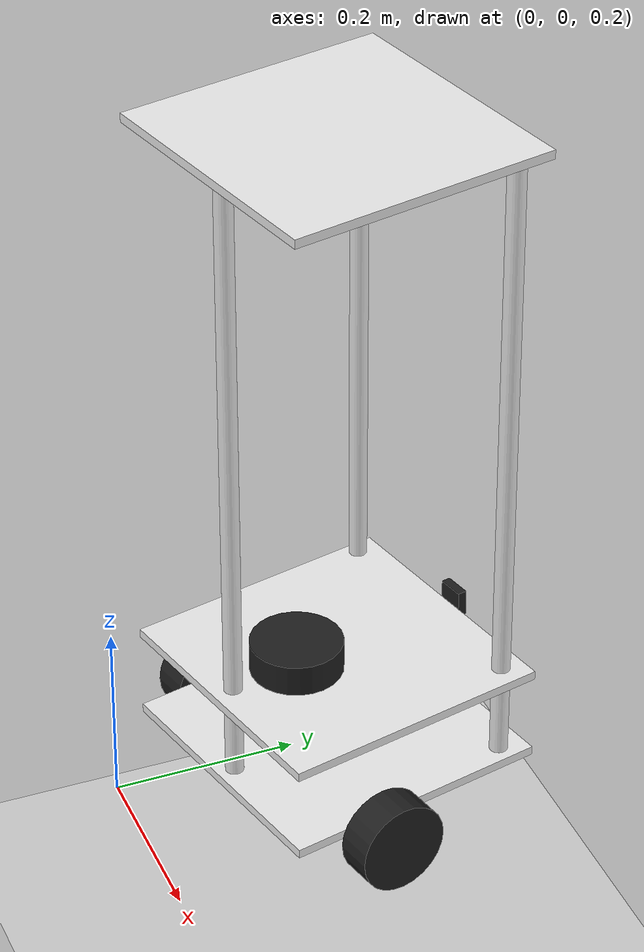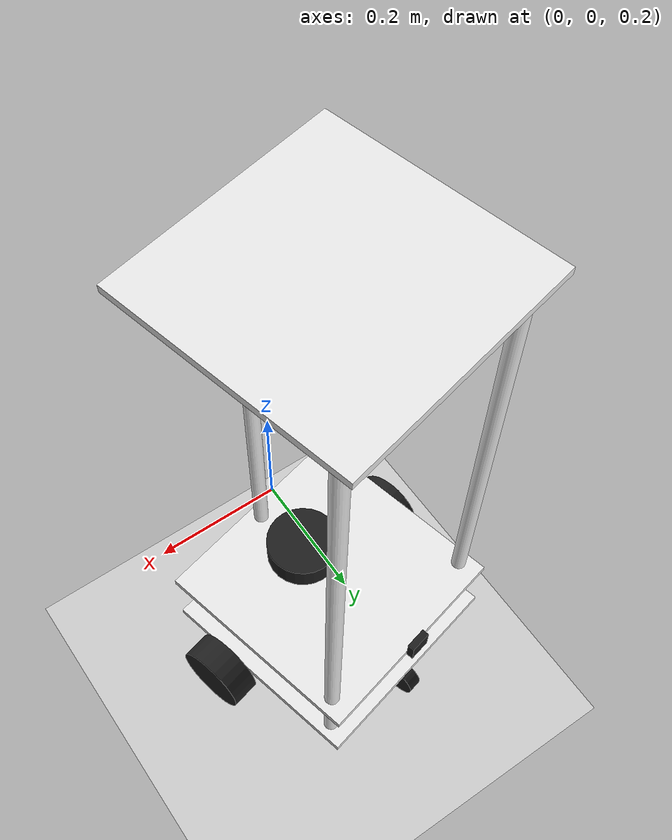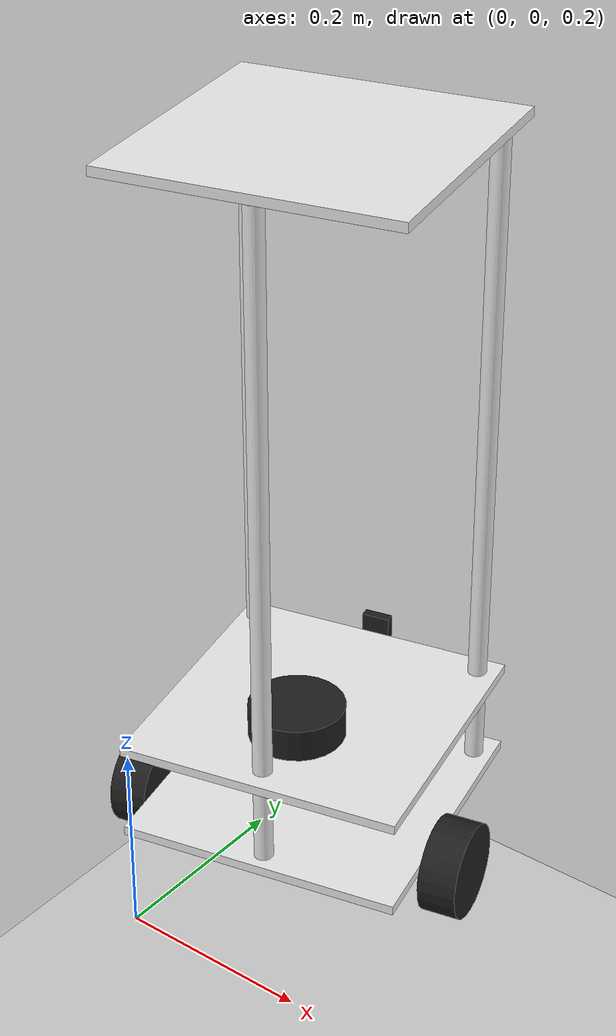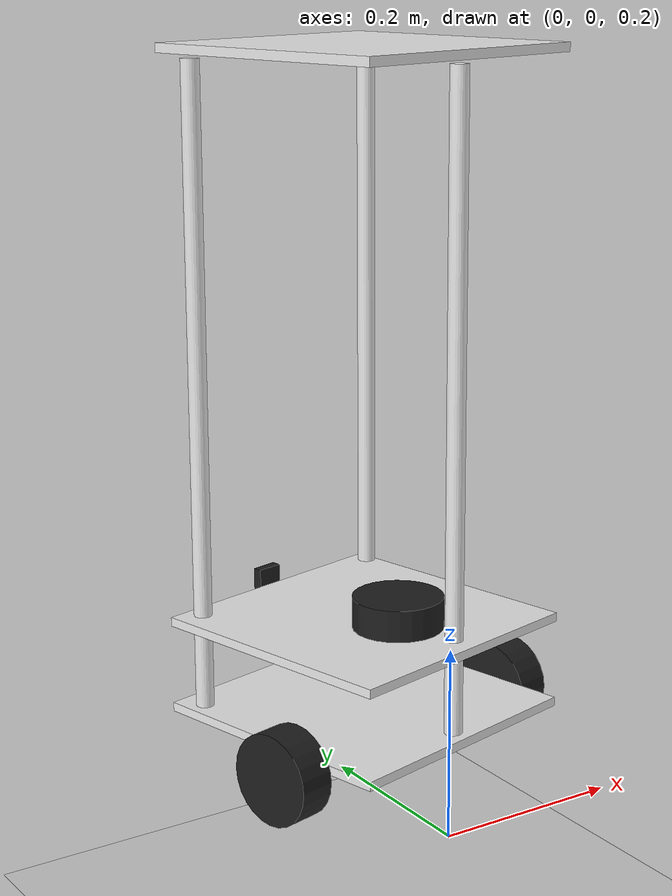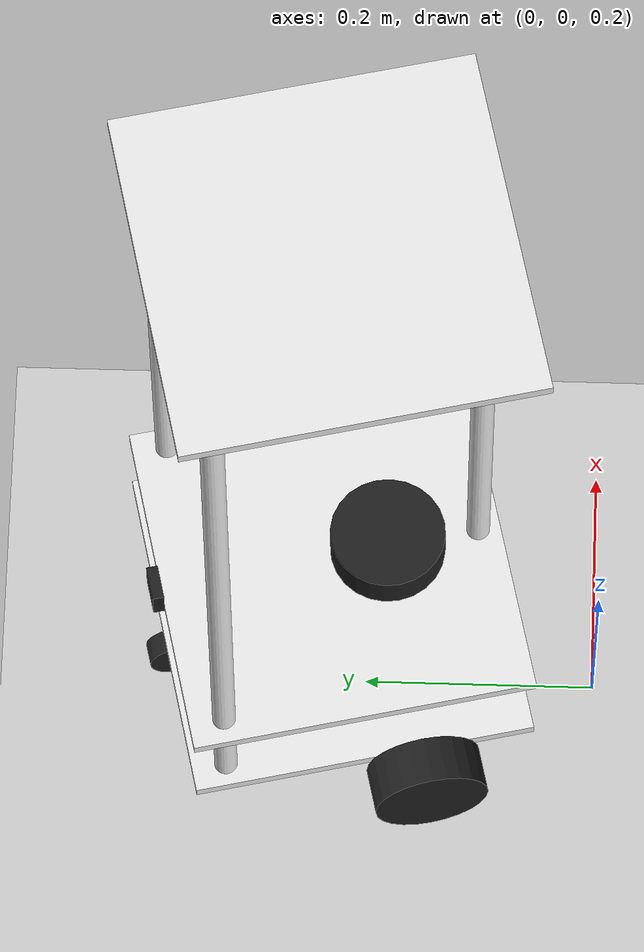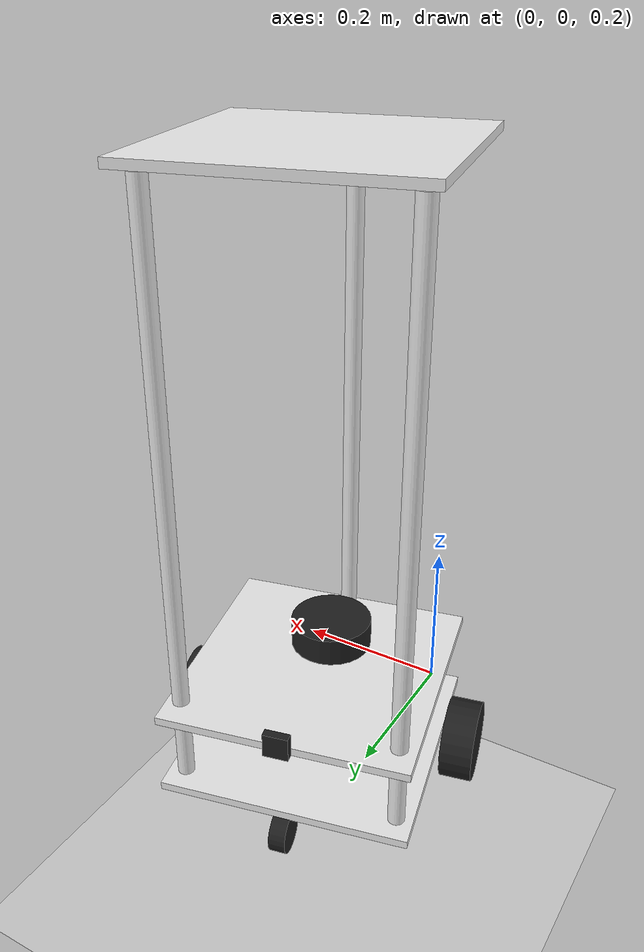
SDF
<sdf version="1.7">
 <world name="default">
  <light name="sun" type="directional">
   <pose>0 0 10 0 -0 0</pose>
   <diffuse>0.8 0.8 0.8 1</diffuse>
   <specular>0.2 0.2 0.2 1</specular>
   <attenuation>
    <range>1000</range>
    <constant>0.9</constant>
    <linear>0.01</linear>
    <quadratic>0.001</quadratic>
   </attenuation>
   <direction>-0.5 0.1 -0.9</direction>
   <spot><inner_angle>0</inner_angle><outer_angle>0</outer_angle><falloff>0</falloff></spot>
  </light>
  <model name="ground_plane">
   <static>1</static>
   <link name="link">
    <collision name="collision">
     <geometry><plane><normal>0 0 1</normal><size>100 100</size></plane></geometry>
     <surface><friction><ode><mu>100</mu><mu2>50</mu2></ode></friction></surface>
    </collision>
    <visual name="visual">
     <cast_shadows>0</cast_shadows>
     <geometry><plane><normal>0 0 1</normal><size>100 100</size></plane></geometry>
     <material>
      <script><uri>file://media/materials/scripts/gazebo.material</uri><name>Gazebo/Grey</name></script>
     </material>
    </visual>
   </link>
  </model>
  <gravity>0 0 -9.8</gravity>
  <magnetic_field>6e-06 2.3e-05 -4.2e-05</magnetic_field>
  <atmosphere type="adiabatic"/>
  <physics type="ode">
   <max_step_size>0.001</max_step_size>
   <real_time_factor>1</real_time_factor>
   <real_time_update_rate>1000</real_time_update_rate>
  </physics>
  <scene><ambient>0.4 0.4 0.4 1</ambient><background>0.7 0.7 0.7 1</background><shadows>1</shadows></scene>
  <audio><device>default</device></audio>
  <spherical_coordinates>
   <surface_model>EARTH_WGS84</surface_model>
   <latitude_deg>0</latitude_deg>
   <longitude_deg>0</longitude_deg>
   <elevation>0</elevation>
   <heading_deg>0</heading_deg>
  </spherical_coordinates>
  <model name="SLAM_ros2_bot">
   <link name="base_link">
    <inertial>
     <pose>0.055714 0 0.072143 0 -0 0</pose>
     <mass>0.7</mass>
     <inertia>
      <ixx>0.00572262</ixx>
      <ixy>0</ixy>
      <ixz>0.000938571</ixz>
      <iyy>0.00675976</iyy>
      <iyz>0</iyz>
      <izz>0.00876214</izz>
     </inertia>
    </inertial>
    <collision name="base_link_fixed_joint_lump__chassis_collision">
     <pose>0.05 0 0.075 0 -0 0</pose>
     <geometry><box><size>0.3 0.3 0.15</size></box></geometry>
    </collision>
    <collision name="base_link_fixed_joint_lump__caster_wheel_collision_1">
     <pose>0.14 0 0 0 -0 0</pose>
     <geometry><sphere><radius>0.05</radius></sphere></geometry>
     <surface><friction><ode><mu>0.001</mu><mu2>0.001</mu2></ode></friction></surface>
    </collision>
    <collision name="base_link_fixed_joint_lump__laser_frame_collision_2">
     <pose>0 0 0.13 0 -0 0</pose>
     <geometry><cylinder><length>0.04</length><radius>0.05</radius></cylinder></geometry>
    </collision>
    <visual name="base_link_fixed_joint_lump__chassis_visual">
     <pose>0.05 0 0.01 0 -0 0</pose>
     <geometry><box><size>0.3 0.3 0.01</size></box></geometry>
     <material>
      <script><name>Gazebo/White</name><uri>file://media/materials/scripts/gazebo.material</uri></script>
     </material>
    </visual>
    <visual name="base_link_fixed_joint_lump__chassis_visual_1">
     <pose>0.05 0 0.11 0 -0 0</pose>
     <geometry><box><size>0.3 0.3 0.01</size></box></geometry>
     <material>
      <script><name>Gazebo/White</name><uri>file://media/materials/scripts/gazebo.material</uri></script>
     </material>
    </visual>
    <visual name="base_link_fixed_joint_lump__chassis_visual_2">
     <pose>0.17 0.13 0.06 0 -0 0</pose>
     <geometry><cylinder><length>0.1</length><radius>0.01</radius></cylinder></geometry>
     <material>
      <script><name>Gazebo/White</name><uri>file://media/materials/scripts/gazebo.material</uri></script>
     </material>
    </visual>
    <visual name="base_link_fixed_joint_lump__chassis_visual_3">
     <pose>0.17 -0.13 0.06 0 -0 0</pose>
     <geometry><cylinder><length>0.1</length><radius>0.01</radius></cylinder></geometry>
     <material>
      <script><name>Gazebo/White</name><uri>file://media/materials/scripts/gazebo.material</uri></script>
     </material>
    </visual>
    <visual name="base_link_fixed_joint_lump__chassis_visual_4">
     <pose>-0.08 0 0.06 0 -0 0</pose>
     <geometry><cylinder><length>0.1</length><radius>0.01</radius></cylinder></geometry>
     <material>
      <script><name>Gazebo/White</name><uri>file://media/materials/scripts/gazebo.material</uri></script>
     </material>
    </visual>
    <visual name="base_link_fixed_joint_lump__chassis_visual_5">
     <pose>0.17 0.13 0.42 0 -0 0</pose>
     <geometry><cylinder><length>0.6</length><radius>0.01</radius></cylinder></geometry>
     <material>
      <script><name>Gazebo/White</name><uri>file://media/materials/scripts/gazebo.material</uri></script>
     </material>
    </visual>
    <visual name="base_link_fixed_joint_lump__chassis_visual_6">
     <pose>0.17 -0.13 0.42 0 -0 0</pose>
     <geometry><cylinder><length>0.6</length><radius>0.01</radius></cylinder></geometry>
     <material>
      <script><name>Gazebo/White</name><uri>file://media/materials/scripts/gazebo.material</uri></script>
     </material>
    </visual>
    <visual name="base_link_fixed_joint_lump__chassis_visual_7">
     <pose>-0.08 0 0.42 0 -0 0</pose>
     <geometry><cylinder><length>0.6</length><radius>0.01</radius></cylinder></geometry>
     <material>
      <script><name>Gazebo/White</name><uri>file://media/materials/scripts/gazebo.material</uri></script>
     </material>
    </visual>
    <visual name="base_link_fixed_joint_lump__chassis_visual_8">
     <pose>0.05 0 0.73 0 -0 0</pose>
     <geometry><box><size>0.3 0.3 0.01</size></box></geometry>
     <material>
      <script><name>Gazebo/White</name><uri>file://media/materials/scripts/gazebo.material</uri></script>
     </material>
    </visual>
    <visual name="base_link_fixed_joint_lump__camera_link_visual_9">
     <pose>0.205 0 0.12 0 -0 0</pose>
     <geometry><box><size>0.01 0.03 0.03</size></box></geometry>
     <material>
      <script><name>Gazebo/Black</name><uri>file://media/materials/scripts/gazebo.material</uri></script>
     </material>
    </visual>
    <visual name="base_link_fixed_joint_lump__caster_wheel_visual_10">
     <pose>0.19 0 -0.025 -1.5708 0 0</pose>
     <geometry><cylinder><length>0.02</length><radius>0.025</radius></cylinder></geometry>
     <material>
      <script><name>Gazebo/Black</name><uri>file://media/materials/scripts/gazebo.material</uri></script>
     </material>
    </visual>
    <visual name="base_link_fixed_joint_lump__laser_frame_visual_11">
     <pose>0 0 0.13 0 -0 0</pose>
     <geometry><cylinder><length>0.04</length><radius>0.05</radius></cylinder></geometry>
     <material>
      <script><name>Gazebo/Black</name><uri>file://media/materials/scripts/gazebo.material</uri></script>
     </material>
    </visual>
    <sensor name="camera" type="camera">
     <visualize>0</visualize>
     <update_rate>10</update_rate>
     <camera>
      <horizontal_fov>1.089</horizontal_fov>
      <image><width>640</width><height>480</height><format>R8G8B8</format></image>
      <clip><near>0.05</near><far>8</far></clip>
     </camera>
     <plugin name="camera_controller" filename="libgazebo_ros_camera.so">
      <frameName>camera_link_optical</frameName>
     </plugin>
     <pose>0.205 0 0.12 0 -0 0</pose>
    </sensor>
    <sensor name="laser" type="ray">
     <visualize>0</visualize>
     <update_rate>10</update_rate>
     <ray>
      <scan>
       <horizontal>
        <samples>360</samples>
        <resolution>1</resolution>
        <min_angle>-3.14</min_angle>
        <max_angle>3.14</max_angle>
       </horizontal>
       <vertical><samples>1</samples><min_angle>0</min_angle><max_angle>0</max_angle></vertical>
      </scan>
      <range><min>0.3</min><max>12</max><resolution>0.01</resolution></range>
     </ray>
     <plugin name="laser_controller" filename="libgazebo_ros_ray_sensor.so">
      <ros><argument>~/out:=scan</argument></ros>
      <output_type>sensor_msgs/LaserScan</output_type>
      <frameName>laser_frame</frameName>
     </plugin>
     <pose>0 0 0.13 0 -0 0</pose>
    </sensor>
   </link>
   <joint name="left_wheel_joint" type="revolute">
    <pose relative_to="base_link">0 0.175 0 -1.5708 0 0</pose>
    <parent>base_link</parent>
    <child>left_wheel</child>
    <axis>
     <xyz>0 0 1</xyz>
     <limit><lower>-1e+16</lower><upper>1e+16</upper></limit>
     <dynamics><spring_reference>0</spring_reference><spring_stiffness>0</spring_stiffness></dynamics>
    </axis>
   </joint>
   <link name="left_wheel">
    <pose relative_to="left_wheel_joint">0 0 0 0 -0 0</pose>
    <inertial>
     <mass>0.1</mass>
     <inertia>
      <ixx>7.58333e-05</ixx>
      <ixy>0</ixy>
      <ixz>0</ixz>
      <iyy>7.58333e-05</iyy>
      <iyz>0</iyz>
      <izz>0.000125</izz>
     </inertia>
    </inertial>
    <collision name="left_wheel_collision"><geometry><sphere><radius>0.05</radius></sphere></geometry></collision>
    <visual name="left_wheel_visual">
     <geometry><cylinder><length>0.04</length><radius>0.05</radius></cylinder></geometry>
     <material>
      <script><name>Gazebo/Black</name><uri>file://media/materials/scripts/gazebo.material</uri></script>
     </material>
    </visual>
   </link>
   <joint name="right_wheel_joint" type="revolute">
    <pose relative_to="base_link">0 -0.175 0 1.5708 -0 0</pose>
    <parent>base_link</parent>
    <child>right_wheel</child>
    <axis>
     <xyz>0 0 -1</xyz>
     <limit><lower>-1e+16</lower><upper>1e+16</upper></limit>
     <dynamics><spring_reference>0</spring_reference><spring_stiffness>0</spring_stiffness></dynamics>
    </axis>
   </joint>
   <link name="right_wheel">
    <pose relative_to="right_wheel_joint">0 0 0 0 -0 0</pose>
    <inertial>
     <mass>0.1</mass>
     <inertia>
      <ixx>7.58333e-05</ixx>
      <ixy>0</ixy>
      <ixz>0</ixz>
      <iyy>7.58333e-05</iyy>
      <iyz>0</iyz>
      <izz>0.000125</izz>
     </inertia>
    </inertial>
    <collision name="right_wheel_collision">
     <geometry><sphere><radius>0.05</radius></sphere></geometry>
    </collision>
    <visual name="right_wheel_visual">
     <geometry><cylinder><length>0.04</length><radius>0.05</radius></cylinder></geometry>
     <material>
      <script><name>Gazebo/Black</name><uri>file://media/materials/scripts/gazebo.material</uri></script>
     </material>
    </visual>
   </link>
   <static>0</static>
   <plugin name="gazebo_ros2_control" filename="libgazebo_ros2_control.so">
    <parameters>/home/yasiru/dev_ws/install/SLAM_ros2_bot/share/SLAM_ros2_bot/config/my_parameters.yaml</parameters>
   </plugin>
   <pose>0.062871 0.182932 0.239797 -1.7e-05 -2.2e-05 1.79978</pose>
  </model>
 </world>
</sdf>
